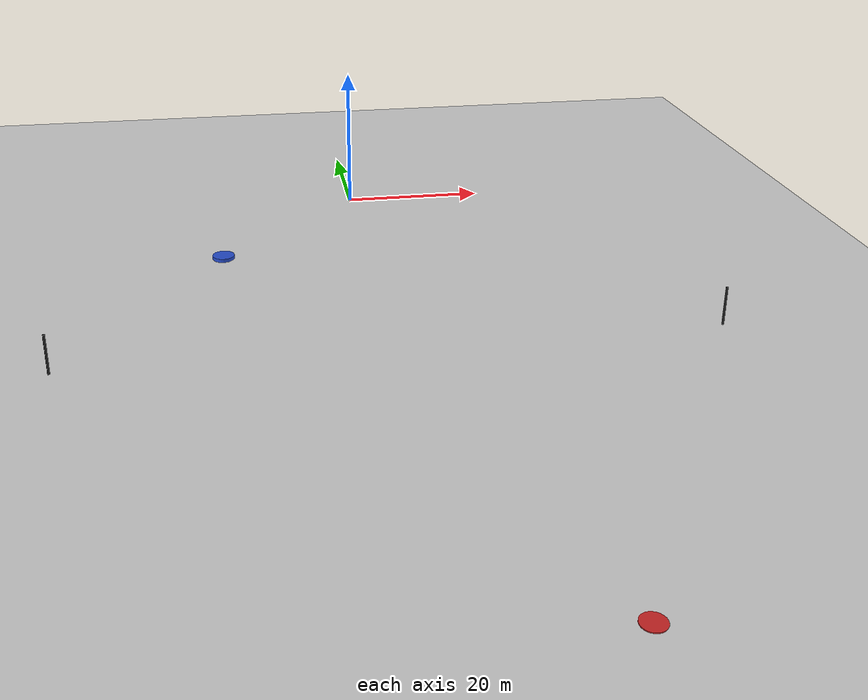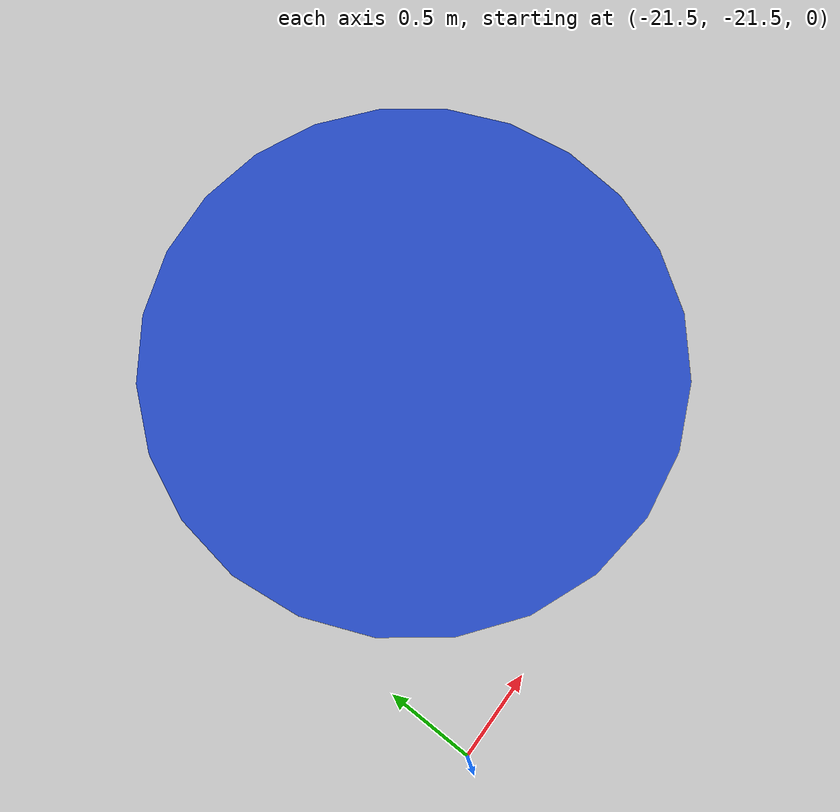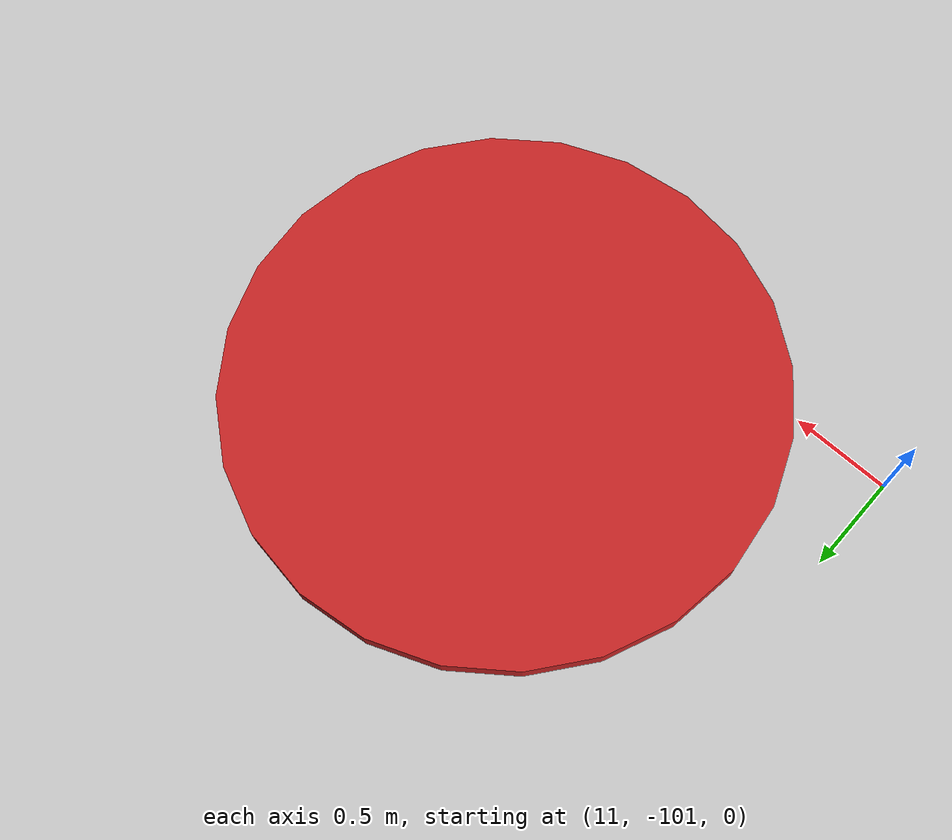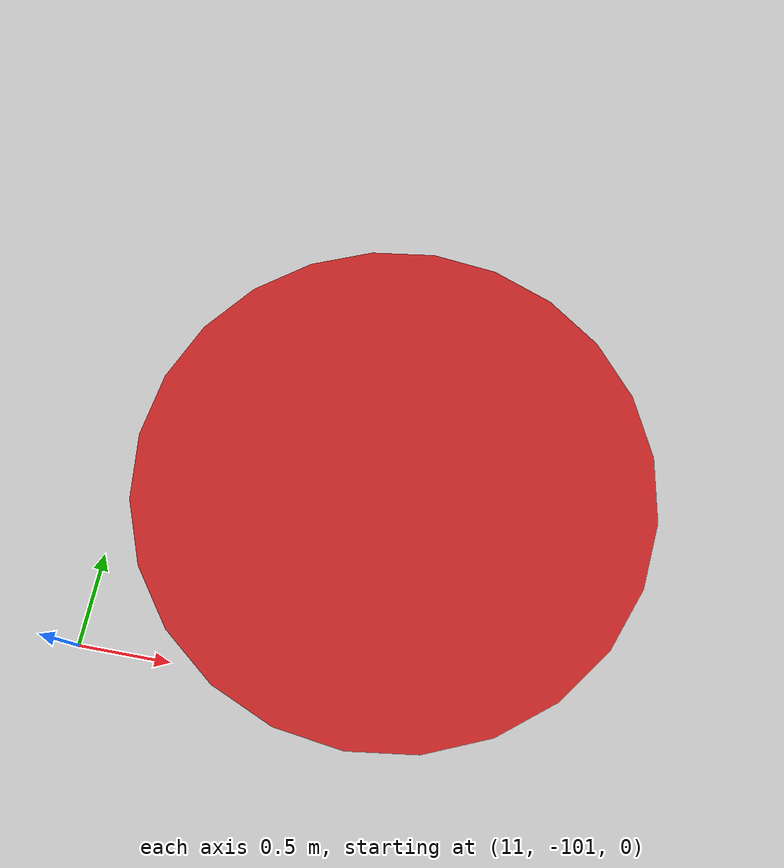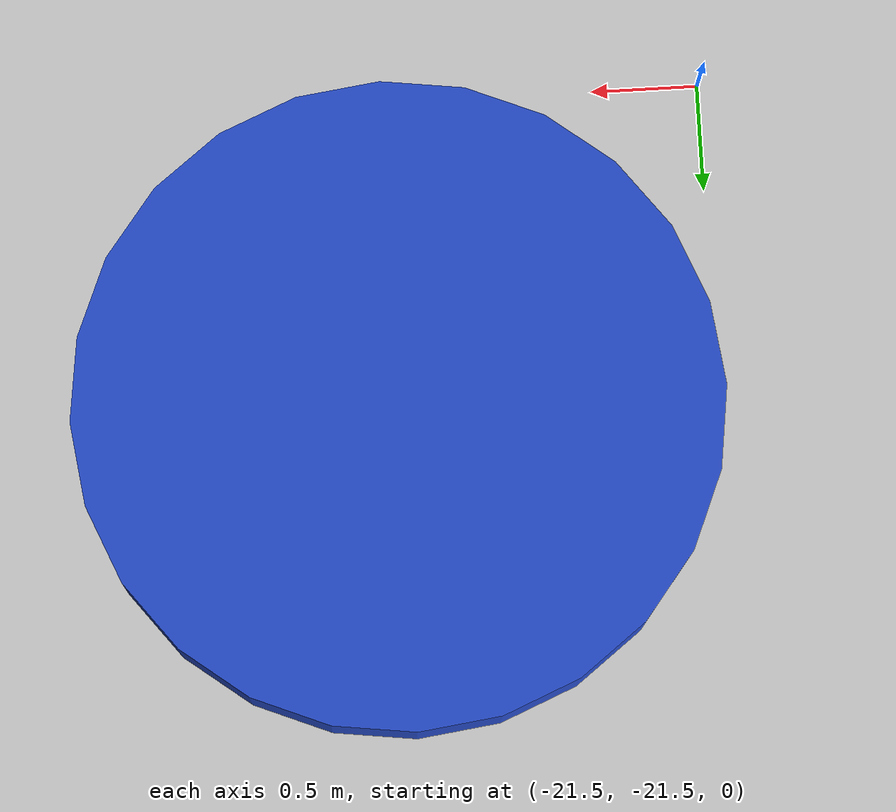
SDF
<sdf version="1.7">
 <world name="default">
  <physics type="ode">
   <ode>
    <solver>
     <type>quick</type>
     <iters>100</iters>
     <sor>1</sor>
     <use_dynamic_moi_rescaling>0</use_dynamic_moi_rescaling>
    </solver>
    <constraints>
     <cfm>0</cfm>
     <erp>0.9</erp>
     <contact_max_correcting_vel>0.1</contact_max_correcting_vel>
     <contact_surface_layer>0</contact_surface_layer>
    </constraints>
   </ode>
   <real_time_update_rate>1000</real_time_update_rate>
   <max_step_size>0.001</max_step_size>
   <real_time_factor>1</real_time_factor>
  </physics>
  <scene>
   <sky><clouds><speed>12</speed></clouds></sky>
   <ambient>0.4 0.4 0.4 1</ambient>
   <background>0.25 0.25 0.25 1</background>
   <shadows>1</shadows>
  </scene>
  <model name="ground_plane">
   <static>1</static>
   <link name="link">
    <collision name="collision">
     <geometry><plane><normal>0 0 1</normal><size>5000 5000</size></plane></geometry>
     <surface><friction><ode><mu>1</mu><mu2>1</mu2></ode></friction></surface>
    </collision>
    <visual name="runway">
     <pose>0 0 0.005 0 -0 0</pose>
     <cast_shadows>0</cast_shadows>
     <geometry><plane><normal>0 0 1</normal><size>1829 45</size></plane></geometry>
     <material>
      <script><uri>file://media/materials/scripts/gazebo.material</uri><name>Gazebo/Runway</name></script>
     </material>
    </visual>
    <visual name="grass">
     <pose>0 0 -0.1 0 -0 0</pose>
     <cast_shadows>0</cast_shadows>
     <geometry><plane><normal>0 0 1</normal><size>5000 5000</size></plane></geometry>
     <material>
      <script><uri>file://media/materials/scripts/gazebo.material</uri><name>Gazebo/Grass</name></script>
     </material>
    </visual>
   </link>
  </model>
  <model name="target">
   <pose>12.5 -100 0.3 0 -0 0</pose>
   <link name="link">
    <inertial>
     <mass>1</mass>
     <inertia><ixx>0.145833</ixx><ixy>0</ixy><ixz>0</ixz><iyy>0.145833</iyy><iyz>0</iyz><izz>0.125</izz></inertia>
    </inertial>
    <collision name="collision">
     <geometry><cylinder><radius>0.5</radius><length>0.6</length></cylinder></geometry>
    </collision>
    <visual name="base">
     <geometry><cylinder><radius>0.5</radius><length>0.6</length></cylinder></geometry>
     <material>
      <script><name>Gazebo/Grey</name><uri>file://media/materials/scripts/gazebo.material</uri></script>
     </material>
    </visual>
    <visual name="top">
     <pose>0 0 0.3 0 -0 0</pose>
     <geometry><cylinder><radius>1.25</radius><length>0.1</length></cylinder></geometry>
     <material>
      <script><name>Gazebo/Red</name><uri>file://media/materials/scripts/gazebo.material</uri></script>
     </material>
    </visual>
   </link>
  </model>
  <model name="pole_1">
   <pose>40 -50 2.5 0 -0 0</pose>
   <link name="link">
    <inertial>
     <mass>1</mass>
     <inertia><ixx>0.145833</ixx><ixy>0</ixy><ixz>0</ixz><iyy>0.145833</iyy><iyz>0</iyz><izz>0.125</izz></inertia>
    </inertial>
    <collision name="collision">
     <geometry><cylinder><radius>0.15</radius><length>5</length></cylinder></geometry>
    </collision>
    <visual name="pole">
     <geometry><cylinder><radius>0.15</radius><length>5</length></cylinder></geometry>
     <material>
      <script><name>Gazebo/Black</name><uri>file://media/materials/scripts/gazebo.material</uri></script>
     </material>
    </visual>
   </link>
   <static>1</static>
  </model>
  <model name="pole_2">
   <pose>-40 -50 2.5 0 -0 0</pose>
   <link name="link">
    <inertial>
     <mass>1</mass>
     <inertia><ixx>0.145833</ixx><ixy>0</ixy><ixz>0</ixz><iyy>0.145833</iyy><iyz>0</iyz><izz>0.125</izz></inertia>
    </inertial>
    <collision name="collision">
     <geometry><cylinder><radius>0.15</radius><length>5</length></cylinder></geometry>
    </collision>
    <visual name="pole">
     <geometry><cylinder><radius>0.15</radius><length>5</length></cylinder></geometry>
     <material>
      <script><name>Gazebo/Black</name><uri>file://media/materials/scripts/gazebo.material</uri></script>
     </material>
    </visual>
   </link>
   <static>1</static>
  </model>
  <model name="pool">
   <pose>-20 -20 0.25 0 -0 0</pose>
   <link name="link">
    <inertial>
     <mass>1</mass>
     <inertia><ixx>0.145833</ixx><ixy>0</ixy><ixz>0</ixz><iyy>0.145833</iyy><iyz>0</iyz><izz>0.125</izz></inertia>
    </inertial>
    <collision name="collision">
     <geometry><cylinder><radius>1.5</radius><length>0.5</length></cylinder></geometry>
    </collision>
    <visual name="pool">
     <geometry><cylinder><radius>1.5</radius><length>0.5</length></cylinder></geometry>
     <material>
      <script><name>Gazebo/Blue</name><uri>file://media/materials/scripts/gazebo.material</uri></script>
     </material>
    </visual>
   </link>
   <static>1</static>
  </model>
  <light name="sun" type="directional">
   <pose>0 0 10 0 -0 0</pose>
   <diffuse>0.8 0.8 0.8 1</diffuse>
   <specular>0.2 0.2 0.2 1</specular>
   <attenuation>
    <range>1000</range>
    <constant>0.9</constant>
    <linear>0.01</linear>
    <quadratic>0.001</quadratic>
   </attenuation>
   <direction>-0.5 0.1 -0.9</direction>
   <spot><inner_angle>0</inner_angle><outer_angle>0</outer_angle><falloff>0</falloff></spot>
  </light>
  <gravity>0 0 -9.8</gravity>
  <magnetic_field>6e-06 2.3e-05 -4.2e-05</magnetic_field>
  <atmosphere type="adiabatic"/>
  <spherical_coordinates>
   <surface_model>EARTH_WGS84</surface_model>
   <latitude_deg>0</latitude_deg>
   <longitude_deg>0</longitude_deg>
   <elevation>0</elevation>
   <heading_deg>0</heading_deg>
  </spherical_coordinates>
 </world>
</sdf>
